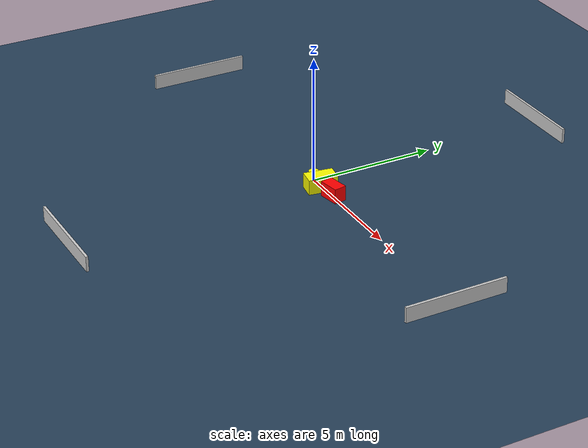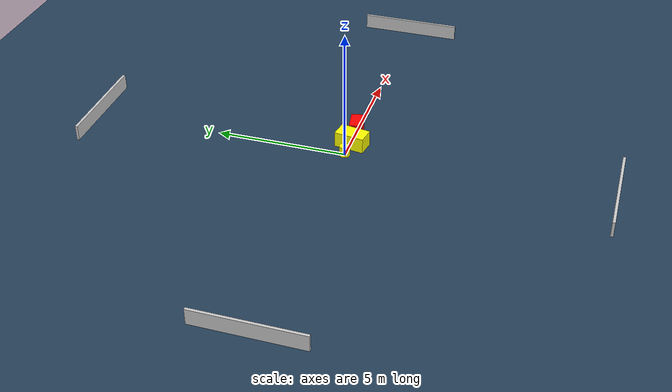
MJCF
<?xml version="1.0" ?>
<mujoco model="generated_environment">
  <option timestep="0.01" integrator="RK4" cone="elliptic"/>
  <default>
    <geom density="1"/>
  </default>
  <asset>
    <texture builtin="gradient" height="3072" name="skybox" rgb1="0.3 0.5 0.7" rgb2="0 0 0" type="skybox" width="512"/>
    <texture builtin="checker" height="300" name="groundplane" rgb1="0.2 0.3 0.4" rgb2="0.1 0.2 0.3" type="2d" width="300"/>
    <material name="groundplane" reflectance="0.2" texrepeat="5 5" texture="groundplane"/>
  </asset>
  <worldbody>
    <light dir="0 0 -1" directional="true" pos="0 0 1.5"/>
    <geom condim="3" friction="0.5 0.005 0.001" material="groundplane" name="floor" pos="0 0 0" size="0 0 0.05" type="plane"/>
    <body name="walls">
      <geom name="wall_1" condim="4" pos="-10.0 0.0 0.3" rgba="0.800000011920929 0.800000011920929 0.800000011920929 1.0" size="0.05 2.0 0.3" type="box"/>
      <geom name="wall_2" condim="4" pos="10.0 0.0 0.3" rgba="0.800000011920929 0.800000011920929 0.800000011920929 1.0" size="0.05 2.0 0.3" type="box"/>
      <geom name="wall_3" condim="4" pos="0.0 -10.0 0.3" rgba="0.800000011920929 0.800000011920929 0.800000011920929 1.0" size="2.0 0.05 0.3" type="box"/>
      <geom name="wall_4" condim="4" pos="0.0 10.0 0.3" rgba="0.800000011920929 0.800000011920929 0.800000011920929 1.0" size="2.0 0.05 0.3" type="box"/>
    </body>
    <body name="robot">
      <joint name="joint_x" type="slide" pos="0 0 0" axis="1 0 0"/>
      <joint name="joint_y" type="slide" pos="0 0 0" axis="0 1 0"/>
      <geom name="robot" type="cylinder" pos="0.0 0.0 0.2" size="0.2 0.2 0.0" mass="5.0" friction="1.0 0.005 0.0001" condim="4" rgba="1.0 1.0 0.0 1.0"/>
    </body>
    <body name="obstacle_1_movable">
      <geom name="obstacle_1_movable" condim="4" pos="0.6893401568656027 -0.08726761923110771 0.3" euler="0 0 170.96487861396577" friction="0.0 0.005 0.001" rgba="1.0 1.0 0.0 1.0" size="0.3260048542436522 0.5745750364322018 0.3" type="box" mass="0.1"/>
      <joint type="free"/>
    </body>
    <body name="obstacle_2_static">
      <geom name="obstacle_2_static" condim="4" pos="1.528776492262297 -0.009029719592033322 0.3" euler="0 0 100.01146002030545" friction="0.0 0.005 0.001" rgba="1.0 0.0 0.0 1.0" size="0.24461181007321547 0.4126080440238903 0.3" type="box"/>
    </body>
  </worldbody>
  <actuator>
    <motor name="actuator_x" joint="joint_x" gear="1" ctrlrange="-1 1"/>
    <motor name="actuator_y" joint="joint_y" gear="1" ctrlrange="-1 1"/>
  </actuator>
</mujoco>
